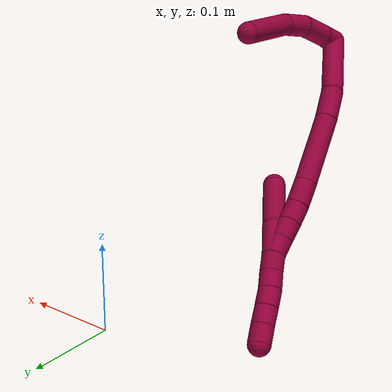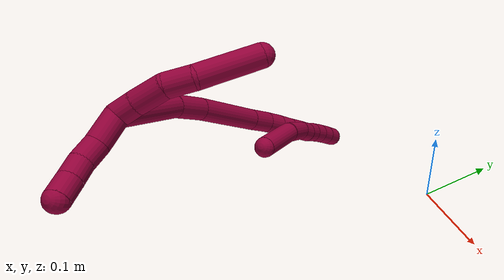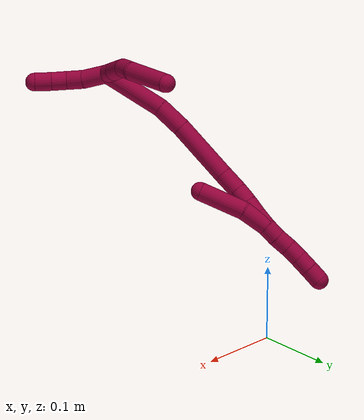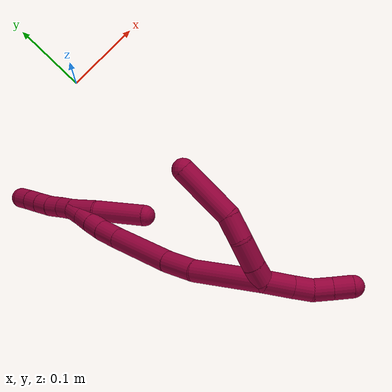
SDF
<sdf version="1.7">
 <world name="default">
  <model name="8">
   <static>0</static>
   <link name="8">
    <collision name="collision-cylinder-e_1_2_8">
     <pose>-0.002002 0.010404 -0.001156 -1.68141 -0.18896 0.210954</pose>
     <geometry><cylinder><radius>0.0125</radius><length>0.021315</length></cylinder></geometry>
     <surface>
      <friction><ode><mu>1.16</mu><mu2>1.16</mu2><slip1>0</slip1><slip2>0</slip2></ode></friction>
      <contact><ode><kp>1e+06</kp><kd>1</kd><max_vel>0</max_vel><min_depth>0.001</min_depth></ode></contact>
     </surface>
    </collision>
    <visual name="visual-cylinder-e_1_2_8">
     <pose>-0.002002 0.010404 -0.001156 -1.68141 -0.18896 0.210954</pose>
     <geometry><cylinder><radius>0.0125</radius><length>0.021315</length></cylinder></geometry>
     <material><ambient>0.584314 0 0.227451 1</ambient></material>
    </visual>
    <collision name="collision-cylinder-e_2_8_9">
     <pose>-0.006116 0.036888 -0.00367 -1.65512 -0.130172 0.141601</pose>
     <geometry><cylinder><radius>0.0125</radius><length>0.03255</length></cylinder></geometry>
     <surface>
      <friction><ode><mu>1.16</mu><mu2>1.16</mu2><slip1>0</slip1><slip2>0</slip2></ode></friction>
      <contact><ode><kp>1e+06</kp><kd>1</kd><max_vel>0</max_vel><min_depth>0.001</min_depth></ode></contact>
     </surface>
    </collision>
    <visual name="visual-cylinder-e_2_8_9">
     <pose>-0.006116 0.036888 -0.00367 -1.65512 -0.130172 0.141601</pose>
     <geometry><cylinder><radius>0.0125</radius><length>0.03255</length></cylinder></geometry>
     <material><ambient>0.584314 0 0.227451 1</ambient></material>
    </visual>
    <collision name="collision-cylinder-e_3_9_10">
     <pose>-0.007321 0.066627 -0.009233 -1.86933 0.063452 -0.08589</pose>
     <geometry><cylinder><radius>0.0125</radius><length>0.028641</length></cylinder></geometry>
     <surface>
      <friction><ode><mu>1.16</mu><mu2>1.16</mu2><slip1>0</slip1><slip2>0</slip2></ode></friction>
      <contact><ode><kp>1e+06</kp><kd>1</kd><max_vel>0</max_vel><min_depth>0.001</min_depth></ode></contact>
     </surface>
    </collision>
    <visual name="visual-cylinder-e_3_9_10">
     <pose>-0.007321 0.066627 -0.009233 -1.86933 0.063452 -0.08589</pose>
     <geometry><cylinder><radius>0.0125</radius><length>0.028641</length></cylinder></geometry>
     <material><ambient>0.584314 0 0.227451 1</ambient></material>
    </visual>
    <collision name="collision-cylinder-e_4_10_6">
     <pose>-0.009528 0.108252 -0.032066 -2.15846 -0.092452 0.172374</pose>
     <geometry><cylinder><radius>0.0125</radius><length>0.067494</length></cylinder></geometry>
     <surface>
      <friction><ode><mu>1.16</mu><mu2>1.16</mu2><slip1>0</slip1><slip2>0</slip2></ode></friction>
      <contact><ode><kp>1e+06</kp><kd>1</kd><max_vel>0</max_vel><min_depth>0.001</min_depth></ode></contact>
     </surface>
    </collision>
    <visual name="visual-cylinder-e_4_10_6">
     <pose>-0.009528 0.108252 -0.032066 -2.15846 -0.092452 0.172374</pose>
     <geometry><cylinder><radius>0.0125</radius><length>0.067494</length></cylinder></geometry>
     <material><ambient>0.584314 0 0.227451 1</ambient></material>
    </visual>
    <collision name="collision-cylinder-e_1_2_11">
     <pose>0.01158 -0.008993 0.007915 0.849081 0.768441 0.361535</pose>
     <geometry><cylinder><radius>0.0125</radius><length>0.033323</length></cylinder></geometry>
     <surface>
      <friction><ode><mu>1.16</mu><mu2>1.16</mu2><slip1>0</slip1><slip2>0</slip2></ode></friction>
      <contact><ode><kp>1e+06</kp><kd>1</kd><max_vel>0</max_vel><min_depth>0.001</min_depth></ode></contact>
     </surface>
    </collision>
    <visual name="visual-cylinder-e_1_2_11">
     <pose>0.01158 -0.008993 0.007915 0.849081 0.768441 0.361535</pose>
     <geometry><cylinder><radius>0.0125</radius><length>0.033323</length></cylinder></geometry>
     <material><ambient>0.584314 0 0.227451 1</ambient></material>
    </visual>
    <collision name="collision-cylinder-e_2_11_12">
     <pose>0.030207 -0.023389 0.022777 0.661035 0.67515 0.239711</pose>
     <geometry><cylinder><radius>0.0125</radius><length>0.02255</length></cylinder></geometry>
     <surface>
      <friction><ode><mu>1.16</mu><mu2>1.16</mu2><slip1>0</slip1><slip2>0</slip2></ode></friction>
      <contact><ode><kp>1e+06</kp><kd>1</kd><max_vel>0</max_vel><min_depth>0.001</min_depth></ode></contact>
     </surface>
    </collision>
    <visual name="visual-cylinder-e_2_11_12">
     <pose>0.030207 -0.023389 0.022777 0.661035 0.67515 0.239711</pose>
     <geometry><cylinder><radius>0.0125</radius><length>0.02255</length></cylinder></geometry>
     <material><ambient>0.584314 0 0.227451 1</ambient></material>
    </visual>
    <collision name="collision-cylinder-e_3_12_13">
     <pose>0.044923 -0.031445 0.036885 0.354759 0.787559 0.148686</pose>
     <geometry><cylinder><radius>0.0125</radius><length>0.021645</length></cylinder></geometry>
     <surface>
      <friction><ode><mu>1.16</mu><mu2>1.16</mu2><slip1>0</slip1><slip2>0</slip2></ode></friction>
      <contact><ode><kp>1e+06</kp><kd>1</kd><max_vel>0</max_vel><min_depth>0.001</min_depth></ode></contact>
     </surface>
    </collision>
    <visual name="visual-cylinder-e_3_12_13">
     <pose>0.044923 -0.031445 0.036885 0.354759 0.787559 0.148686</pose>
     <geometry><cylinder><radius>0.0125</radius><length>0.021645</length></cylinder></geometry>
     <material><ambient>0.584314 0 0.227451 1</ambient></material>
    </visual>
    <collision name="collision-cylinder-e_4_13_5">
     <pose>0.060365 -0.036539 0.05179 0.305406 0.763497 0.123408</pose>
     <geometry><cylinder><radius>0.0125</radius><length>0.022482</length></cylinder></geometry>
     <surface>
      <friction><ode><mu>1.16</mu><mu2>1.16</mu2><slip1>0</slip1><slip2>0</slip2></ode></friction>
      <contact><ode><kp>1e+06</kp><kd>1</kd><max_vel>0</max_vel><min_depth>0.001</min_depth></ode></contact>
     </surface>
    </collision>
    <visual name="visual-cylinder-e_4_13_5">
     <pose>0.060365 -0.036539 0.05179 0.305406 0.763497 0.123408</pose>
     <geometry><cylinder><radius>0.0125</radius><length>0.022482</length></cylinder></geometry>
     <material><ambient>0.584314 0 0.227451 1</ambient></material>
    </visual>
    <collision name="collision-cylinder-e_1_2_14">
     <pose>-0.007296 0.008008 -0.0409 -2.94824 -0.173296 1.46089</pose>
     <geometry><cylinder><radius>0.0125</radius><length>0.08462</length></cylinder></geometry>
     <surface>
      <friction><ode><mu>1.16</mu><mu2>1.16</mu2><slip1>0</slip1><slip2>0</slip2></ode></friction>
      <contact><ode><kp>1e+06</kp><kd>1</kd><max_vel>0</max_vel><min_depth>0.001</min_depth></ode></contact>
     </surface>
    </collision>
    <visual name="visual-cylinder-e_1_2_14">
     <pose>-0.007296 0.008008 -0.0409 -2.94824 -0.173296 1.46089</pose>
     <geometry><cylinder><radius>0.0125</radius><length>0.08462</length></cylinder></geometry>
     <material><ambient>0.584314 0 0.227451 1</ambient></material>
    </visual>
    <collision name="collision-cylinder-e_2_14_15">
     <pose>-0.013919 0.020295 -0.100809 -2.9202 0.034455 -0.307577</pose>
     <geometry><cylinder><radius>0.0125</radius><length>0.038992</length></cylinder></geometry>
     <surface>
      <friction><ode><mu>1.16</mu><mu2>1.16</mu2><slip1>0</slip1><slip2>0</slip2></ode></friction>
      <contact><ode><kp>1e+06</kp><kd>1</kd><max_vel>0</max_vel><min_depth>0.001</min_depth></ode></contact>
     </surface>
    </collision>
    <visual name="visual-cylinder-e_2_14_15">
     <pose>-0.013919 0.020295 -0.100809 -2.9202 0.034455 -0.307577</pose>
     <geometry><cylinder><radius>0.0125</radius><length>0.038992</length></cylinder></geometry>
     <material><ambient>0.584314 0 0.227451 1</ambient></material>
    </visual>
    <collision name="collision-cylinder-e_3_15_16">
     <pose>-0.007821 0.034883 -0.160479 -2.89328 0.128646 -0.952931</pose>
     <geometry><cylinder><radius>0.0125</radius><length>0.084595</length></cylinder></geometry>
     <surface>
      <friction><ode><mu>1.16</mu><mu2>1.16</mu2><slip1>0</slip1><slip2>0</slip2></ode></friction>
      <contact><ode><kp>1e+06</kp><kd>1</kd><max_vel>0</max_vel><min_depth>0.001</min_depth></ode></contact>
     </surface>
    </collision>
    <visual name="visual-cylinder-e_3_15_16">
     <pose>-0.007821 0.034883 -0.160479 -2.89328 0.128646 -0.952931</pose>
     <geometry><cylinder><radius>0.0125</radius><length>0.084595</length></cylinder></geometry>
     <material><ambient>0.584314 0 0.227451 1</ambient></material>
    </visual>
    <collision name="collision-cylinder-e_4_16_17">
     <pose>-0.000641 0.049283 -0.214965 -2.85391 0.121088 -0.792725</pose>
     <geometry><cylinder><radius>0.0125</radius><length>0.029047</length></cylinder></geometry>
     <surface>
      <friction><ode><mu>1.16</mu><mu2>1.16</mu2><slip1>0</slip1><slip2>0</slip2></ode></friction>
      <contact><ode><kp>1e+06</kp><kd>1</kd><max_vel>0</max_vel><min_depth>0.001</min_depth></ode></contact>
     </surface>
    </collision>
    <visual name="visual-cylinder-e_4_16_17">
     <pose>-0.000641 0.049283 -0.214965 -2.85391 0.121088 -0.792725</pose>
     <geometry><cylinder><radius>0.0125</radius><length>0.029047</length></cylinder></geometry>
     <material><ambient>0.584314 0 0.227451 1</ambient></material>
    </visual>
    <collision name="collision-cylinder-e_5_17_18">
     <pose>0.003176 0.056925 -0.238846 -2.80211 0.190976 -1.0192</pose>
     <geometry><cylinder><radius>0.0125</radius><length>0.021725</length></cylinder></geometry>
     <surface>
      <friction><ode><mu>1.16</mu><mu2>1.16</mu2><slip1>0</slip1><slip2>0</slip2></ode></friction>
      <contact><ode><kp>1e+06</kp><kd>1</kd><max_vel>0</max_vel><min_depth>0.001</min_depth></ode></contact>
     </surface>
    </collision>
    <visual name="visual-cylinder-e_5_17_18">
     <pose>0.003176 0.056925 -0.238846 -2.80211 0.190976 -1.0192</pose>
     <geometry><cylinder><radius>0.0125</radius><length>0.021725</length></cylinder></geometry>
     <material><ambient>0.584314 0 0.227451 1</ambient></material>
    </visual>
    <collision name="collision-cylinder-e_6_18_19">
     <pose>0.007819 0.063884 -0.258356 -2.79559 0.251439 -1.25232</pose>
     <geometry><cylinder><radius>0.0125</radius><length>0.020749</length></cylinder></geometry>
     <surface>
      <friction><ode><mu>1.16</mu><mu2>1.16</mu2><slip1>0</slip1><slip2>0</slip2></ode></friction>
      <contact><ode><kp>1e+06</kp><kd>1</kd><max_vel>0</max_vel><min_depth>0.001</min_depth></ode></contact>
     </surface>
    </collision>
    <visual name="visual-cylinder-e_6_18_19">
     <pose>0.007819 0.063884 -0.258356 -2.79559 0.251439 -1.25232</pose>
     <geometry><cylinder><radius>0.0125</radius><length>0.020749</length></cylinder></geometry>
     <material><ambient>0.584314 0 0.227451 1</ambient></material>
    </visual>
    <collision name="collision-cylinder-e_7_19_1">
     <pose>0.012392 0.070632 -0.277168 -2.7989 0.197806 -1.04129</pose>
     <geometry><cylinder><radius>0.0125</radius><length>0.020271</length></cylinder></geometry>
     <surface>
      <friction><ode><mu>1.16</mu><mu2>1.16</mu2><slip1>0</slip1><slip2>0</slip2></ode></friction>
      <contact><ode><kp>1e+06</kp><kd>1</kd><max_vel>0</max_vel><min_depth>0.001</min_depth></ode></contact>
     </surface>
    </collision>
    <visual name="visual-cylinder-e_7_19_1">
     <pose>0.012392 0.070632 -0.277168 -2.7989 0.197806 -1.04129</pose>
     <geometry><cylinder><radius>0.0125</radius><length>0.020271</length></cylinder></geometry>
     <material><ambient>0.584314 0 0.227451 1</ambient></material>
    </visual>
    <collision name="collision-cylinder-e_1_1_20">
     <pose>0.016951 0.072011 -0.268438 0.10794 0.140171 0.007585</pose>
     <geometry><cylinder><radius>0.0125</radius><length>0.036753</length></cylinder></geometry>
     <surface>
      <friction><ode><mu>1.16</mu><mu2>1.16</mu2><slip1>0</slip1><slip2>0</slip2></ode></friction>
      <contact><ode><kp>1e+06</kp><kd>1</kd><max_vel>0</max_vel><min_depth>0.001</min_depth></ode></contact>
     </surface>
    </collision>
    <visual name="visual-cylinder-e_1_1_20">
     <pose>0.016951 0.072011 -0.268438 0.10794 0.140171 0.007585</pose>
     <geometry><cylinder><radius>0.0125</radius><length>0.036753</length></cylinder></geometry>
     <material><ambient>0.584314 0 0.227451 1</ambient></material>
    </visual>
    <collision name="collision-cylinder-e_2_20_4">
     <pose>0.029149 0.062691 -0.221139 0.246823 0.309473 0.038692</pose>
     <geometry><cylinder><radius>0.0125</radius><length>0.063247</length></cylinder></geometry>
     <surface>
      <friction><ode><mu>1.16</mu><mu2>1.16</mu2><slip1>0</slip1><slip2>0</slip2></ode></friction>
      <contact><ode><kp>1e+06</kp><kd>1</kd><max_vel>0</max_vel><min_depth>0.001</min_depth></ode></contact>
     </surface>
    </collision>
    <visual name="visual-cylinder-e_2_20_4">
     <pose>0.029149 0.062691 -0.221139 0.246823 0.309473 0.038692</pose>
     <geometry><cylinder><radius>0.0125</radius><length>0.063247</length></cylinder></geometry>
     <material><ambient>0.584314 0 0.227451 1</ambient></material>
    </visual>
    <collision name="collision-cylinder-e_1_1_21">
     <pose>0.015001 0.0748 -0.296475 -3.05839 0.061751 -1.27668</pose>
     <geometry><cylinder><radius>0.0125</radius><length>0.02</length></cylinder></geometry>
     <surface>
      <friction><ode><mu>1.16</mu><mu2>1.16</mu2><slip1>0</slip1><slip2>0</slip2></ode></friction>
      <contact><ode><kp>1e+06</kp><kd>1</kd><max_vel>0</max_vel><min_depth>0.001</min_depth></ode></contact>
     </surface>
    </collision>
    <visual name="visual-cylinder-e_1_1_21">
     <pose>0.015001 0.0748 -0.296475 -3.05839 0.061751 -1.27668</pose>
     <geometry><cylinder><radius>0.0125</radius><length>0.02</length></cylinder></geometry>
     <material><ambient>0.584314 0 0.227451 1</ambient></material>
    </visual>
    <collision name="collision-cylinder-e_2_21_22">
     <pose>0.015172 0.076642 -0.31636 -3.04006 -0.044548 0.826394</pose>
     <geometry><cylinder><radius>0.0125</radius><length>0.02</length></cylinder></geometry>
     <surface>
      <friction><ode><mu>1.16</mu><mu2>1.16</mu2><slip1>0</slip1><slip2>0</slip2></ode></friction>
      <contact><ode><kp>1e+06</kp><kd>1</kd><max_vel>0</max_vel><min_depth>0.001</min_depth></ode></contact>
     </surface>
    </collision>
    <visual name="visual-cylinder-e_2_21_22">
     <pose>0.015172 0.076642 -0.31636 -3.04006 -0.044548 0.826394</pose>
     <geometry><cylinder><radius>0.0125</radius><length>0.02</length></cylinder></geometry>
     <material><ambient>0.584314 0 0.227451 1</ambient></material>
    </visual>
    <collision name="collision-cylinder-e_3_22_23">
     <pose>0.015222 0.07934 -0.336143 -2.97213 0.049552 -0.567778</pose>
     <geometry><cylinder><radius>0.0125</radius><length>0.02</length></cylinder></geometry>
     <surface>
      <friction><ode><mu>1.16</mu><mu2>1.16</mu2><slip1>0</slip1><slip2>0</slip2></ode></friction>
      <contact><ode><kp>1e+06</kp><kd>1</kd><max_vel>0</max_vel><min_depth>0.001</min_depth></ode></contact>
     </surface>
    </collision>
    <visual name="visual-cylinder-e_3_22_23">
     <pose>0.015222 0.07934 -0.336143 -2.97213 0.049552 -0.567778</pose>
     <geometry><cylinder><radius>0.0125</radius><length>0.02</length></cylinder></geometry>
     <material><ambient>0.584314 0 0.227451 1</ambient></material>
    </visual>
    <collision name="collision-cylinder-e_4_23_24">
     <pose>0.016581 0.082608 -0.355824 -2.98187 0.086414 -0.99058</pose>
     <geometry><cylinder><radius>0.0125</radius><length>0.02</length></cylinder></geometry>
     <surface>
      <friction><ode><mu>1.16</mu><mu2>1.16</mu2><slip1>0</slip1><slip2>0</slip2></ode></friction>
      <contact><ode><kp>1e+06</kp><kd>1</kd><max_vel>0</max_vel><min_depth>0.001</min_depth></ode></contact>
     </surface>
    </collision>
    <visual name="visual-cylinder-e_4_23_24">
     <pose>0.016581 0.082608 -0.355824 -2.98187 0.086414 -0.99058</pose>
     <geometry><cylinder><radius>0.0125</radius><length>0.02</length></cylinder></geometry>
     <material><ambient>0.584314 0 0.227451 1</ambient></material>
    </visual>
    <collision name="collision-cylinder-e_5_24_3">
     <pose>0.018368 0.085395 -0.375544 -3.02056 0.092605 -1.30572</pose>
     <geometry><cylinder><radius>0.0125</radius><length>0.02</length></cylinder></geometry>
     <surface>
      <friction><ode><mu>1.16</mu><mu2>1.16</mu2><slip1>0</slip1><slip2>0</slip2></ode></friction>
      <contact><ode><kp>1e+06</kp><kd>1</kd><max_vel>0</max_vel><min_depth>0.001</min_depth></ode></contact>
     </surface>
    </collision>
    <visual name="visual-cylinder-e_5_24_3">
     <pose>0.018368 0.085395 -0.375544 -3.02056 0.092605 -1.30572</pose>
     <geometry><cylinder><radius>0.0125</radius><length>0.02</length></cylinder></geometry>
     <material><ambient>0.584314 0 0.227451 1</ambient></material>
    </visual>
    <collision name="collision-sphere-3">
     <pose>0.019293 0.086597 -0.385428 0 -0 0</pose>
     <geometry><sphere><radius>0.0125</radius></sphere></geometry>
     <surface>
      <friction><ode><mu>1.16</mu><mu2>1.16</mu2><slip1>0</slip1><slip2>0</slip2></ode></friction>
      <contact><ode><kp>1e+06</kp><kd>1</kd><max_vel>0</max_vel><min_depth>0.001</min_depth></ode></contact>
     </surface>
    </collision>
    <visual name="visual-sphere-3">
     <pose>0.019293 0.086597 -0.385428 0 -0 0</pose>
     <geometry><sphere><radius>0.0125</radius></sphere></geometry>
     <material><ambient>0.584314 0 0.227451 1</ambient></material>
    </visual>
    <collision name="collision-sphere-24">
     <pose>0.017444 0.084193 -0.365659 0 -0 0</pose>
     <geometry><sphere><radius>0.0125</radius></sphere></geometry>
     <surface>
      <friction><ode><mu>1.16</mu><mu2>1.16</mu2><slip1>0</slip1><slip2>0</slip2></ode></friction>
      <contact><ode><kp>1e+06</kp><kd>1</kd><max_vel>0</max_vel><min_depth>0.001</min_depth></ode></contact>
     </surface>
    </collision>
    <visual name="visual-sphere-24">
     <pose>0.017444 0.084193 -0.365659 0 -0 0</pose>
     <geometry><sphere><radius>0.0125</radius></sphere></geometry>
     <material><ambient>0.584314 0 0.227451 1</ambient></material>
    </visual>
    <collision name="collision-sphere-23">
     <pose>0.015718 0.081024 -0.345988 0 -0 0</pose>
     <geometry><sphere><radius>0.0125</radius></sphere></geometry>
     <surface>
      <friction><ode><mu>1.16</mu><mu2>1.16</mu2><slip1>0</slip1><slip2>0</slip2></ode></friction>
      <contact><ode><kp>1e+06</kp><kd>1</kd><max_vel>0</max_vel><min_depth>0.001</min_depth></ode></contact>
     </surface>
    </collision>
    <visual name="visual-sphere-23">
     <pose>0.015718 0.081024 -0.345988 0 -0 0</pose>
     <geometry><sphere><radius>0.0125</radius></sphere></geometry>
     <material><ambient>0.584314 0 0.227451 1</ambient></material>
    </visual>
    <collision name="collision-sphere-22">
     <pose>0.014727 0.077655 -0.326298 0 -0 0</pose>
     <geometry><sphere><radius>0.0125</radius></sphere></geometry>
     <surface>
      <friction><ode><mu>1.16</mu><mu2>1.16</mu2><slip1>0</slip1><slip2>0</slip2></ode></friction>
      <contact><ode><kp>1e+06</kp><kd>1</kd><max_vel>0</max_vel><min_depth>0.001</min_depth></ode></contact>
     </surface>
    </collision>
    <visual name="visual-sphere-22">
     <pose>0.014727 0.077655 -0.326298 0 -0 0</pose>
     <geometry><sphere><radius>0.0125</radius></sphere></geometry>
     <material><ambient>0.584314 0 0.227451 1</ambient></material>
    </visual>
    <collision name="collision-sphere-21">
     <pose>0.015618 0.07563 -0.306421 0 -0 0</pose>
     <geometry><sphere><radius>0.0125</radius></sphere></geometry>
     <surface>
      <friction><ode><mu>1.16</mu><mu2>1.16</mu2><slip1>0</slip1><slip2>0</slip2></ode></friction>
      <contact><ode><kp>1e+06</kp><kd>1</kd><max_vel>0</max_vel><min_depth>0.001</min_depth></ode></contact>
     </surface>
    </collision>
    <visual name="visual-sphere-21">
     <pose>0.015618 0.07563 -0.306421 0 -0 0</pose>
     <geometry><sphere><radius>0.0125</radius></sphere></geometry>
     <material><ambient>0.584314 0 0.227451 1</ambient></material>
    </visual>
    <collision name="collision-sphere-4">
     <pose>0.038781 0.055332 -0.191931 0 -0 0</pose>
     <geometry><sphere><radius>0.0125</radius></sphere></geometry>
     <surface>
      <friction><ode><mu>1.16</mu><mu2>1.16</mu2><slip1>0</slip1><slip2>0</slip2></ode></friction>
      <contact><ode><kp>1e+06</kp><kd>1</kd><max_vel>0</max_vel><min_depth>0.001</min_depth></ode></contact>
     </surface>
    </collision>
    <visual name="visual-sphere-4">
     <pose>0.038781 0.055332 -0.191931 0 -0 0</pose>
     <geometry><sphere><radius>0.0125</radius></sphere></geometry>
     <material><ambient>0.584314 0 0.227451 1</ambient></material>
    </visual>
    <collision name="collision-sphere-20">
     <pose>0.019518 0.07005 -0.250348 0 -0 0</pose>
     <geometry><sphere><radius>0.0125</radius></sphere></geometry>
     <surface>
      <friction><ode><mu>1.16</mu><mu2>1.16</mu2><slip1>0</slip1><slip2>0</slip2></ode></friction>
      <contact><ode><kp>1e+06</kp><kd>1</kd><max_vel>0</max_vel><min_depth>0.001</min_depth></ode></contact>
     </surface>
    </collision>
    <visual name="visual-sphere-20">
     <pose>0.019518 0.07005 -0.250348 0 -0 0</pose>
     <geometry><sphere><radius>0.0125</radius></sphere></geometry>
     <material><ambient>0.584314 0 0.227451 1</ambient></material>
    </visual>
    <collision name="collision-sphere-11">
     <pose>0.02316 -0.017985 0.015829 0 -0 0</pose>
     <geometry><sphere><radius>0.0125</radius></sphere></geometry>
     <surface>
      <friction><ode><mu>1.16</mu><mu2>1.16</mu2><slip1>0</slip1><slip2>0</slip2></ode></friction>
      <contact><ode><kp>1e+06</kp><kd>1</kd><max_vel>0</max_vel><min_depth>0.001</min_depth></ode></contact>
     </surface>
    </collision>
    <visual name="visual-sphere-11">
     <pose>0.02316 -0.017985 0.015829 0 -0 0</pose>
     <geometry><sphere><radius>0.0125</radius></sphere></geometry>
     <material><ambient>0.584314 0 0.227451 1</ambient></material>
    </visual>
    <collision name="collision-sphere-6">
     <pose>-0.012644 0.136218 -0.050696 0 -0 0</pose>
     <geometry><sphere><radius>0.0125</radius></sphere></geometry>
     <surface>
      <friction><ode><mu>1.16</mu><mu2>1.16</mu2><slip1>0</slip1><slip2>0</slip2></ode></friction>
      <contact><ode><kp>1e+06</kp><kd>1</kd><max_vel>0</max_vel><min_depth>0.001</min_depth></ode></contact>
     </surface>
    </collision>
    <visual name="visual-sphere-6">
     <pose>-0.012644 0.136218 -0.050696 0 -0 0</pose>
     <geometry><sphere><radius>0.0125</radius></sphere></geometry>
     <material><ambient>0.584314 0 0.227451 1</ambient></material>
    </visual>
    <collision name="collision-sphere-10">
     <pose>-0.006413 0.080287 -0.013436 0 -0 0</pose>
     <geometry><sphere><radius>0.0125</radius></sphere></geometry>
     <surface>
      <friction><ode><mu>1.16</mu><mu2>1.16</mu2><slip1>0</slip1><slip2>0</slip2></ode></friction>
      <contact><ode><kp>1e+06</kp><kd>1</kd><max_vel>0</max_vel><min_depth>0.001</min_depth></ode></contact>
     </surface>
    </collision>
    <visual name="visual-sphere-10">
     <pose>-0.006413 0.080287 -0.013436 0 -0 0</pose>
     <geometry><sphere><radius>0.0125</radius></sphere></geometry>
     <material><ambient>0.584314 0 0.227451 1</ambient></material>
    </visual>
    <collision name="collision-sphere-9">
     <pose>-0.008229 0.052968 -0.005029 0 -0 0</pose>
     <geometry><sphere><radius>0.0125</radius></sphere></geometry>
     <surface>
      <friction><ode><mu>1.16</mu><mu2>1.16</mu2><slip1>0</slip1><slip2>0</slip2></ode></friction>
      <contact><ode><kp>1e+06</kp><kd>1</kd><max_vel>0</max_vel><min_depth>0.001</min_depth></ode></contact>
     </surface>
    </collision>
    <visual name="visual-sphere-9">
     <pose>-0.008229 0.052968 -0.005029 0 -0 0</pose>
     <geometry><sphere><radius>0.0125</radius></sphere></geometry>
     <material><ambient>0.584314 0 0.227451 1</ambient></material>
    </visual>
    <collision name="collision-sphere-2">
     <geometry><sphere><radius>0.0125</radius></sphere></geometry>
     <surface>
      <friction><ode><mu>1.16</mu><mu2>1.16</mu2><slip1>0</slip1><slip2>0</slip2></ode></friction>
      <contact><ode><kp>1e+06</kp><kd>1</kd><max_vel>0</max_vel><min_depth>0.001</min_depth></ode></contact>
     </surface>
    </collision>
    <visual name="visual-sphere-2">
     <geometry><sphere><radius>0.0125</radius></sphere></geometry>
     <material><ambient>0.584314 0 0.227451 1</ambient></material>
    </visual>
    <collision name="collision-sphere-19">
     <pose>0.0104 0.067292 -0.267809 0 -0 0</pose>
     <geometry><sphere><radius>0.0125</radius></sphere></geometry>
     <surface>
      <friction><ode><mu>1.16</mu><mu2>1.16</mu2><slip1>0</slip1><slip2>0</slip2></ode></friction>
      <contact><ode><kp>1e+06</kp><kd>1</kd><max_vel>0</max_vel><min_depth>0.001</min_depth></ode></contact>
     </surface>
    </collision>
    <visual name="visual-sphere-19">
     <pose>0.0104 0.067292 -0.267809 0 -0 0</pose>
     <geometry><sphere><radius>0.0125</radius></sphere></geometry>
     <material><ambient>0.584314 0 0.227451 1</ambient></material>
    </visual>
    <collision name="collision-sphere-8">
     <pose>-0.004004 0.020808 -0.002311 0 -0 0</pose>
     <geometry><sphere><radius>0.0125</radius></sphere></geometry>
     <surface>
      <friction><ode><mu>1.16</mu><mu2>1.16</mu2><slip1>0</slip1><slip2>0</slip2></ode></friction>
      <contact><ode><kp>1e+06</kp><kd>1</kd><max_vel>0</max_vel><min_depth>0.001</min_depth></ode></contact>
     </surface>
    </collision>
    <visual name="visual-sphere-8">
     <pose>-0.004004 0.020808 -0.002311 0 -0 0</pose>
     <geometry><sphere><radius>0.0125</radius></sphere></geometry>
     <material><ambient>0.584314 0 0.227451 1</ambient></material>
    </visual>
    <collision name="collision-sphere-12">
     <pose>0.037254 -0.028792 0.029724 0 -0 0</pose>
     <geometry><sphere><radius>0.0125</radius></sphere></geometry>
     <surface>
      <friction><ode><mu>1.16</mu><mu2>1.16</mu2><slip1>0</slip1><slip2>0</slip2></ode></friction>
      <contact><ode><kp>1e+06</kp><kd>1</kd><max_vel>0</max_vel><min_depth>0.001</min_depth></ode></contact>
     </surface>
    </collision>
    <visual name="visual-sphere-12">
     <pose>0.037254 -0.028792 0.029724 0 -0 0</pose>
     <geometry><sphere><radius>0.0125</radius></sphere></geometry>
     <material><ambient>0.584314 0 0.227451 1</ambient></material>
    </visual>
    <collision name="collision-sphere-13">
     <pose>0.052592 -0.034097 0.044045 0 -0 0</pose>
     <geometry><sphere><radius>0.0125</radius></sphere></geometry>
     <surface>
      <friction><ode><mu>1.16</mu><mu2>1.16</mu2><slip1>0</slip1><slip2>0</slip2></ode></friction>
      <contact><ode><kp>1e+06</kp><kd>1</kd><max_vel>0</max_vel><min_depth>0.001</min_depth></ode></contact>
     </surface>
    </collision>
    <visual name="visual-sphere-13">
     <pose>0.052592 -0.034097 0.044045 0 -0 0</pose>
     <geometry><sphere><radius>0.0125</radius></sphere></geometry>
     <material><ambient>0.584314 0 0.227451 1</ambient></material>
    </visual>
    <collision name="collision-sphere-5">
     <pose>0.068138 -0.038981 0.059535 0 -0 0</pose>
     <geometry><sphere><radius>0.0125</radius></sphere></geometry>
     <surface>
      <friction><ode><mu>1.16</mu><mu2>1.16</mu2><slip1>0</slip1><slip2>0</slip2></ode></friction>
      <contact><ode><kp>1e+06</kp><kd>1</kd><max_vel>0</max_vel><min_depth>0.001</min_depth></ode></contact>
     </surface>
    </collision>
    <visual name="visual-sphere-5">
     <pose>0.068138 -0.038981 0.059535 0 -0 0</pose>
     <geometry><sphere><radius>0.0125</radius></sphere></geometry>
     <material><ambient>0.584314 0 0.227451 1</ambient></material>
    </visual>
    <collision name="collision-sphere-14">
     <pose>-0.014591 0.016016 -0.0818 0 -0 0</pose>
     <geometry><sphere><radius>0.0125</radius></sphere></geometry>
     <surface>
      <friction><ode><mu>1.16</mu><mu2>1.16</mu2><slip1>0</slip1><slip2>0</slip2></ode></friction>
      <contact><ode><kp>1e+06</kp><kd>1</kd><max_vel>0</max_vel><min_depth>0.001</min_depth></ode></contact>
     </surface>
    </collision>
    <visual name="visual-sphere-14">
     <pose>-0.014591 0.016016 -0.0818 0 -0 0</pose>
     <geometry><sphere><radius>0.0125</radius></sphere></geometry>
     <material><ambient>0.584314 0 0.227451 1</ambient></material>
    </visual>
    <collision name="collision-sphere-15">
     <pose>-0.013248 0.024573 -0.119817 0 -0 0</pose>
     <geometry><sphere><radius>0.0125</radius></sphere></geometry>
     <surface>
      <friction><ode><mu>1.16</mu><mu2>1.16</mu2><slip1>0</slip1><slip2>0</slip2></ode></friction>
      <contact><ode><kp>1e+06</kp><kd>1</kd><max_vel>0</max_vel><min_depth>0.001</min_depth></ode></contact>
     </surface>
    </collision>
    <visual name="visual-sphere-15">
     <pose>-0.013248 0.024573 -0.119817 0 -0 0</pose>
     <geometry><sphere><radius>0.0125</radius></sphere></geometry>
     <material><ambient>0.584314 0 0.227451 1</ambient></material>
    </visual>
    <collision name="collision-sphere-16">
     <pose>-0.002395 0.045192 -0.20114 0 -0 0</pose>
     <geometry><sphere><radius>0.0125</radius></sphere></geometry>
     <surface>
      <friction><ode><mu>1.16</mu><mu2>1.16</mu2><slip1>0</slip1><slip2>0</slip2></ode></friction>
      <contact><ode><kp>1e+06</kp><kd>1</kd><max_vel>0</max_vel><min_depth>0.001</min_depth></ode></contact>
     </surface>
    </collision>
    <visual name="visual-sphere-16">
     <pose>-0.002395 0.045192 -0.20114 0 -0 0</pose>
     <geometry><sphere><radius>0.0125</radius></sphere></geometry>
     <material><ambient>0.584314 0 0.227451 1</ambient></material>
    </visual>
    <collision name="collision-sphere-17">
     <pose>0.001114 0.053374 -0.22879 0 -0 0</pose>
     <geometry><sphere><radius>0.0125</radius></sphere></geometry>
     <surface>
      <friction><ode><mu>1.16</mu><mu2>1.16</mu2><slip1>0</slip1><slip2>0</slip2></ode></friction>
      <contact><ode><kp>1e+06</kp><kd>1</kd><max_vel>0</max_vel><min_depth>0.001</min_depth></ode></contact>
     </surface>
    </collision>
    <visual name="visual-sphere-17">
     <pose>0.001114 0.053374 -0.22879 0 -0 0</pose>
     <geometry><sphere><radius>0.0125</radius></sphere></geometry>
     <material><ambient>0.584314 0 0.227451 1</ambient></material>
    </visual>
    <collision name="collision-sphere-18">
     <pose>0.005237 0.060477 -0.248903 0 -0 0</pose>
     <geometry><sphere><radius>0.0125</radius></sphere></geometry>
     <surface>
      <friction><ode><mu>1.16</mu><mu2>1.16</mu2><slip1>0</slip1><slip2>0</slip2></ode></friction>
      <contact><ode><kp>1e+06</kp><kd>1</kd><max_vel>0</max_vel><min_depth>0.001</min_depth></ode></contact>
     </surface>
    </collision>
    <visual name="visual-sphere-18">
     <pose>0.005237 0.060477 -0.248903 0 -0 0</pose>
     <geometry><sphere><radius>0.0125</radius></sphere></geometry>
     <material><ambient>0.584314 0 0.227451 1</ambient></material>
    </visual>
    <collision name="collision-sphere-1">
     <pose>0.014383 0.073971 -0.286528 0 -0 0</pose>
     <geometry><sphere><radius>0.0125</radius></sphere></geometry>
     <surface>
      <friction><ode><mu>1.16</mu><mu2>1.16</mu2><slip1>0</slip1><slip2>0</slip2></ode></friction>
      <contact><ode><kp>1e+06</kp><kd>1</kd><max_vel>0</max_vel><min_depth>0.001</min_depth></ode></contact>
     </surface>
    </collision>
    <visual name="visual-sphere-1">
     <pose>0.014383 0.073971 -0.286528 0 -0 0</pose>
     <geometry><sphere><radius>0.0125</radius></sphere></geometry>
     <material><ambient>0.584314 0 0.227451 1</ambient></material>
    </visual>
    <inertial>
     <pose>0.00669 0.043654 -0.134229 0 -0 0</pose>
     <mass>0.75</mass>
     <inertia><ixx>0.000135</ixx><ixy>0</ixy><ixz>0</ixz><iyy>-7e-06</iyy><iyz>0</iyz><izz>-8.3e-05</izz></inertia>
    </inertial>
   </link>
   <pose>-0.047793 -0.355175 0.250935 0.572077 0.604569 -0.112902</pose>
  </model>
 </world>
</sdf>
